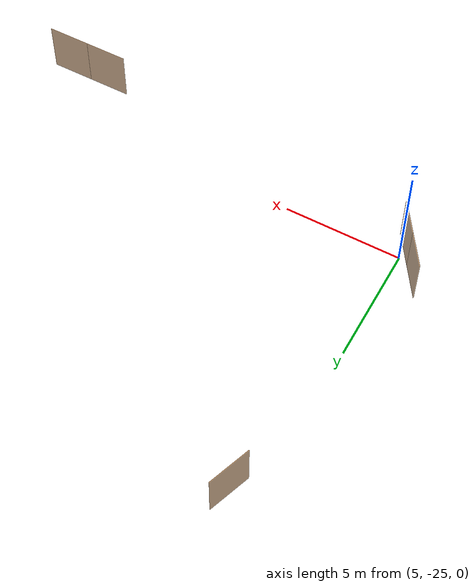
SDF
<sdf version="1.7">
 <world name="sim_world">
  <physics name="10ms" type="ode">
   <max_step_size>0.01</max_step_size>
   <real_time_factor>1.0</real_time_factor>
  </physics>
  <plugin filename="libgz-sim-physics-system.so" name="gz::sim::systems::Physics"/>
  <plugin filename="libgz-sim-user-commands-system.so" name="gz::sim::systems::UserCommands"/>
  <plugin filename="libgz-sim-scene-broadcaster-system.so" name="gz::sim::systems::SceneBroadcaster"/>
  <plugin filename="libdoor.so" name="door"/>
  <plugin filename="liblift.so" name="lift"/>
  <scene><ambient>1 1 1</ambient><background>0.8 0.8 0.8</background><grid>false</grid></scene>
  <light type="directional" name="sun">
   <pose>0 0 10 0 0 0</pose>
   <diffuse>1 1 1 1</diffuse>
   <specular>0.2 0.2 0.2 1</specular>
   <attenuation>
    <range>1000</range>
    <constant>0.09</constant>
    <linear>0.001</linear>
    <quadratic>0.001</quadratic>
   </attenuation>
   <direction>-0.5 0.1 -0.9</direction>
  </light>
  <model name="entrada_principal">
   <pose>4.577676880517892 -24.83888868814278 0.0 0 0 2.1634397524532734</pose>
   <link name="right">
    <pose>0.772032738788463 0 1.11 0 0 0</pose>
    <visual name="right_visual">
     <geometry><box><size>1.534065477576926 0.03 2.2</size></box></geometry>
     <material>
      <ambient>0.5 0.25 0 0.6</ambient>
      <diffuse>0.5 0.25 0 0.6</diffuse>
      <pbr><metal><metalness>0.0</metalness></metal></pbr>
     </material>
    </visual>
    <collision name="right_collision">
     <geometry><box><size>1.534065477576926 0.03 2.2</size></box></geometry>
     <surface><contact><collide_bitmask>0x02</collide_bitmask></contact></surface>
    </collision>
    <inertial>
     <mass>50.0</mass>
     <inertia><ixx>20.17041666666667</ixx><iyy>29.97232037288885</iyy><izz>9.809403706222176</izz></inertia>
    </inertial>
   </link>
   <joint name="right_joint" type="revolute">
    <parent>world</parent>
    <child>right</child>
    <axis><xyz>0 0 1</xyz><limit><lower>0</lower><upper>1.57</upper></limit></axis>
    <pose>0.772032738788463 0 0 0 0 0</pose>
   </joint>
   <link name="left">
    <pose>-0.772032738788463 0 1.11 0 0 0</pose>
    <visual name="left_visual">
     <geometry><box><size>1.534065477576926 0.03 2.2</size></box></geometry>
     <material>
      <ambient>0.5 0.25 0 0.6</ambient>
      <diffuse>0.5 0.25 0 0.6</diffuse>
      <pbr><metal><metalness>0.0</metalness></metal></pbr>
     </material>
    </visual>
    <collision name="left_collision">
     <geometry><box><size>1.534065477576926 0.03 2.2</size></box></geometry>
     <surface><contact><collide_bitmask>0x02</collide_bitmask></contact></surface>
    </collision>
    <inertial>
     <mass>50.0</mass>
     <inertia><ixx>20.17041666666667</ixx><iyy>29.97232037288885</iyy><izz>9.809403706222176</izz></inertia>
    </inertial>
   </link>
   <joint name="left_joint" type="revolute">
    <parent>world</parent>
    <child>left</child>
    <axis><xyz>0 0 1</xyz><limit><lower>-1.57</lower><upper>0</upper></limit></axis>
    <pose>-0.772032738788463 0 0 0 0 0</pose>
   </joint>
   <plugin name="register_component" filename="libregister_component.so">
    <component name="Door">
     <v_max_door>0.5</v_max_door>
     <a_max_door>0.3</a_max_door>
     <a_nom_door>0.15</a_nom_door>
     <dx_min_door>0.01</dx_min_door>
     <f_max_door>500.0</f_max_door>
     <ros_interface>true</ros_interface>
     <door name="entrada_principal" type="DoubleSwingDoor" left_joint_name="left_joint" right_joint_name="right_joint"/>
    </component>
   </plugin>
  </model>
  <model name="puerta_peque">
   <pose>5.97798360764633 -12.894124590555606 0.0 0 0 -1.9125799004918405</pose>
   <link name="right">
    <pose>0 0 1.11 0 0 0</pose>
    <visual name="right_visual">
     <geometry><box><size>1.8231962050908765 0.03 2.2</size></box></geometry>
     <material>
      <ambient>0.5 0.25 0 0.6</ambient>
      <diffuse>0.5 0.25 0 0.6</diffuse>
      <pbr><metal><metalness>0.0</metalness></metal></pbr>
     </material>
    </visual>
    <collision name="right_collision">
     <geometry><box><size>1.8231962050908765 0.03 2.2</size></box></geometry>
     <surface><contact><collide_bitmask>0x02</collide_bitmask></contact></surface>
    </collision>
    <inertial>
     <mass>50.0</mass>
     <inertia><ixx>20.17041666666667</ixx><iyy>34.01685167607406</iyy><izz>13.853935009407392</izz></inertia>
    </inertial>
   </link>
   <joint name="right_joint" type="revolute">
    <parent>world</parent>
    <child>right</child>
    <axis><xyz>0 0 -1</xyz><limit><lower>0</lower><upper>1.57</upper></limit></axis>
    <pose>0.9165981025454383 0 0 0 0 0</pose>
   </joint>
   <plugin name="register_component" filename="libregister_component.so">
    <component name="Door">
     <v_max_door>0.5</v_max_door>
     <a_max_door>0.3</a_max_door>
     <a_nom_door>0.15</a_nom_door>
     <dx_min_door>0.01</dx_min_door>
     <f_max_door>500.0</f_max_door>
     <ros_interface>true</ros_interface>
     <door name="puerta_peque" type="SwingDoor" left_joint_name="empty_joint" right_joint_name="right_joint"/>
    </component>
   </plugin>
  </model>
  <model name="garaje">
   <pose>20.82565530584811 -27.14551380663537 0.0 0 0 3.141592653589793</pose>
   <link name="right">
    <pose>0.9074110411156742 0 1.11 0 0 0</pose>
    <visual name="right_visual">
     <geometry><box><size>1.8048220822313483 0.03 2.2</size></box></geometry>
     <material>
      <ambient>0.5 0.25 0 0.6</ambient>
      <diffuse>0.5 0.25 0 0.6</diffuse>
      <pbr><metal><metalness>0.0</metalness></metal></pbr>
     </material>
    </visual>
    <collision name="right_collision">
     <geometry><box><size>1.8048220822313483 0.03 2.2</size></box></geometry>
     <surface><contact><collide_bitmask>0x02</collide_bitmask></contact></surface>
    </collision>
    <inertial>
     <mass>50.0</mass>
     <inertia><ixx>20.17041666666667</ixx><iyy>33.73909478545792</iyy><izz>13.576178118791251</izz></inertia>
    </inertial>
   </link>
   <joint name="right_joint" type="revolute">
    <parent>world</parent>
    <child>right</child>
    <axis><xyz>0 0 1</xyz><limit><lower>0</lower><upper>1.57</upper></limit></axis>
    <pose>0.9074110411156742 0 0 0 0 0</pose>
   </joint>
   <link name="left">
    <pose>-0.9074110411156742 0 1.11 0 0 0</pose>
    <visual name="left_visual">
     <geometry><box><size>1.8048220822313483 0.03 2.2</size></box></geometry>
     <material>
      <ambient>0.5 0.25 0 0.6</ambient>
      <diffuse>0.5 0.25 0 0.6</diffuse>
      <pbr><metal><metalness>0.0</metalness></metal></pbr>
     </material>
    </visual>
    <collision name="left_collision">
     <geometry><box><size>1.8048220822313483 0.03 2.2</size></box></geometry>
     <surface><contact><collide_bitmask>0x02</collide_bitmask></contact></surface>
    </collision>
    <inertial>
     <mass>50.0</mass>
     <inertia><ixx>20.17041666666667</ixx><iyy>33.73909478545792</iyy><izz>13.576178118791251</izz></inertia>
    </inertial>
   </link>
   <joint name="left_joint" type="revolute">
    <parent>world</parent>
    <child>left</child>
    <axis><xyz>0 0 1</xyz><limit><lower>-1.57</lower><upper>0</upper></limit></axis>
    <pose>-0.9074110411156742 0 0 0 0 0</pose>
   </joint>
   <plugin name="register_component" filename="libregister_component.so">
    <component name="Door">
     <v_max_door>0.5</v_max_door>
     <a_max_door>0.3</a_max_door>
     <a_nom_door>0.15</a_nom_door>
     <dx_min_door>0.01</dx_min_door>
     <f_max_door>500.0</f_max_door>
     <ros_interface>true</ros_interface>
     <door name="garaje" type="DoubleSwingDoor" left_joint_name="left_joint" right_joint_name="right_joint"/>
    </component>
   </plugin>
  </model>
  <rmf_charger_waypoints name="charger_waypoints"/>
 </world>
</sdf>
